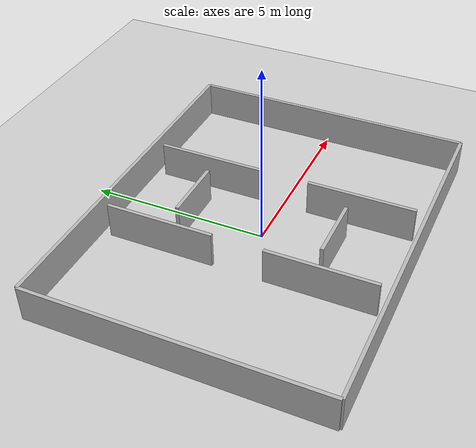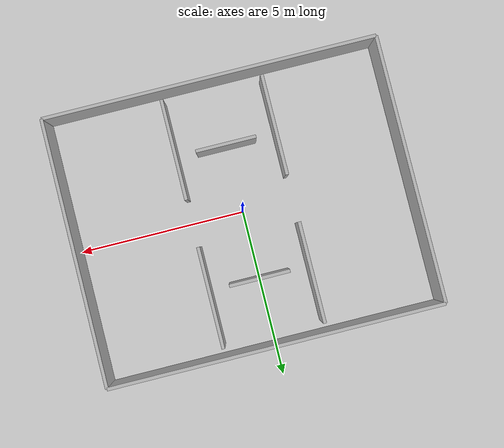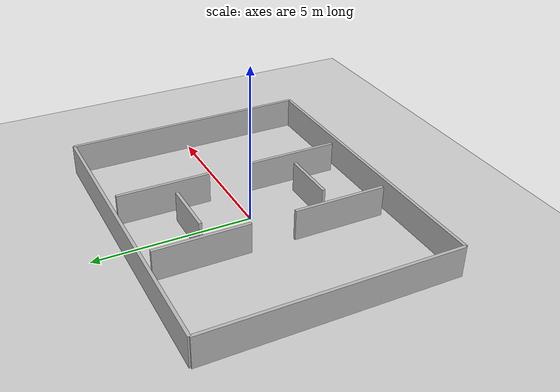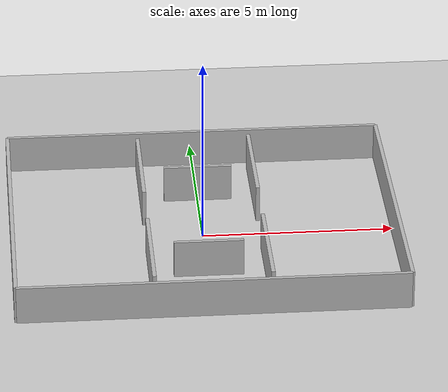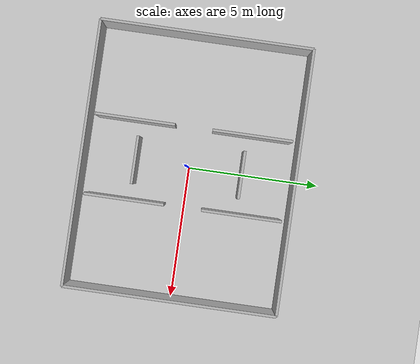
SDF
<?xml version="1.0"?>
<sdf version="1.6">
  <world name="multi_room">
    <include>
      <uri>model://sun</uri>
    </include>

    <include>
      <uri>model://ground_plane</uri>
    </include>

    <model name="wall_north">
      <static>true</static>
      <pose>0 4 0.5 0 0 0</pose>
      <link name="link">
        <collision name="collision">
          <geometry><box><size>10 0.1 1.0</size></box></geometry>
        </collision>
        <visual name="visual">
          <geometry><box><size>10 0.1 1.0</size></box></geometry>
        </visual>
      </link>
    </model>

    <model name="wall_south">
      <static>true</static>
      <pose>0 -4 0.5 0 0 0</pose>
      <link name="link">
        <collision name="collision">
          <geometry><box><size>10 0.1 1.0</size></box></geometry>
        </collision>
        <visual name="visual">
          <geometry><box><size>10 0.1 1.0</size></box></geometry>
        </visual>
      </link>
    </model>

    <model name="wall_east">
      <static>true</static>
      <pose>5 0 0.5 0 0 0</pose>
      <link name="link">
        <collision name="collision">
          <geometry><box><size>0.1 8 1.0</size></box></geometry>
        </collision>
        <visual name="visual">
          <geometry><box><size>0.1 8 1.0</size></box></geometry>
        </visual>
      </link>
    </model>

    <model name="wall_west">
      <static>true</static>
      <pose>-5 0 0.5 0 0 0</pose>
      <link name="link">
        <collision name="collision">
          <geometry><box><size>0.1 8 1.0</size></box></geometry>
        </collision>
        <visual name="visual">
          <geometry><box><size>0.1 8 1.0</size></box></geometry>
        </visual>
      </link>
    </model>

    <model name="left_upper_partition">
      <static>true</static>
      <pose>-1.5 2.2 0.5 0 0 0</pose>
      <link name="link">
        <collision name="collision">
          <geometry><box><size>0.1 3.0 1.0</size></box></geometry>
        </collision>
        <visual name="visual">
          <geometry><box><size>0.1 3.0 1.0</size></box></geometry>
        </visual>
      </link>
    </model>

    <model name="left_lower_partition">
      <static>true</static>
      <pose>-1.5 -2.2 0.5 0 0 0</pose>
      <link name="link">
        <collision name="collision">
          <geometry><box><size>0.1 3.0 1.0</size></box></geometry>
        </collision>
        <visual name="visual">
          <geometry><box><size>0.1 3.0 1.0</size></box></geometry>
        </visual>
      </link>
    </model>

    <model name="right_upper_partition">
      <static>true</static>
      <pose>1.5 2.2 0.5 0 0 0</pose>
      <link name="link">
        <collision name="collision">
          <geometry><box><size>0.1 3.0 1.0</size></box></geometry>
        </collision>
        <visual name="visual">
          <geometry><box><size>0.1 3.0 1.0</size></box></geometry>
        </visual>
      </link>
    </model>

    <model name="right_lower_partition">
      <static>true</static>
      <pose>1.5 -2.2 0.5 0 0 0</pose>
      <link name="link">
        <collision name="collision">
          <geometry><box><size>0.1 3.0 1.0</size></box></geometry>
        </collision>
        <visual name="visual">
          <geometry><box><size>0.1 3.0 1.0</size></box></geometry>
        </visual>
      </link>
    </model>

    <model name="north_partition">
      <static>true</static>
      <pose>0.0 2.0 0.5 0 0 0</pose>
      <link name="link">
        <collision name="collision">
          <geometry><box><size>1.8 0.1 1.0</size></box></geometry>
        </collision>
        <visual name="visual">
          <geometry><box><size>1.8 0.1 1.0</size></box></geometry>
        </visual>
      </link>
    </model>

    <model name="south_partition">
      <static>true</static>
      <pose>0.0 -2.0 0.5 0 0 0</pose>
      <link name="link">
        <collision name="collision">
          <geometry><box><size>1.8 0.1 1.0</size></box></geometry>
        </collision>
        <visual name="visual">
          <geometry><box><size>1.8 0.1 1.0</size></box></geometry>
        </visual>
      </link>
    </model>
  </world>
</sdf>
